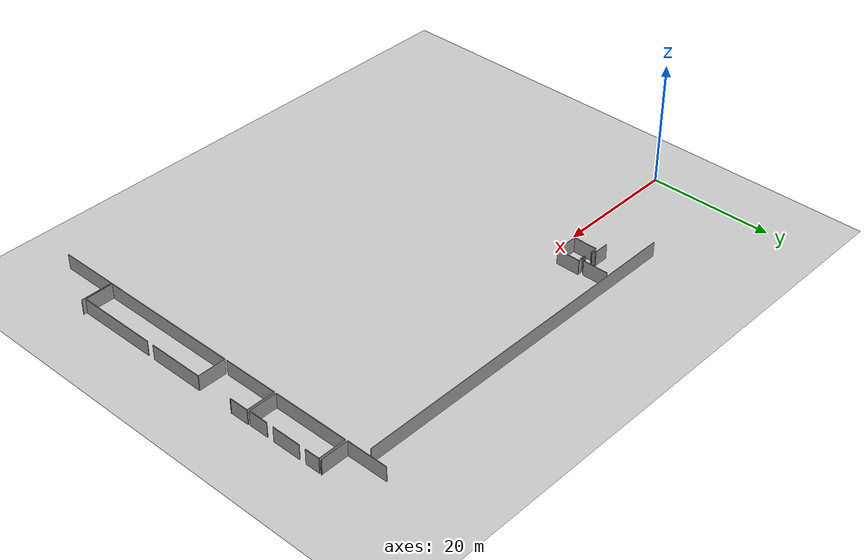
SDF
<sdf version="1.6">
 <world name="default">
  <model name="ground_plane">
   <static>1</static>
   <link name="link">
    <collision name="collision">
     <geometry><plane><normal>0 0 1</normal><size>100 100</size></plane></geometry>
     <surface><friction><ode><mu>100</mu><mu2>50</mu2></ode></friction></surface>
    </collision>
    <visual name="visual">
     <cast_shadows>0</cast_shadows>
     <geometry><plane><normal>0 0 1</normal><size>100 100</size></plane></geometry>
     <material>
      <script><uri>file://media/materials/scripts/gazebo.material</uri><name>Gazebo/Grey</name></script>
     </material>
    </visual>
   </link>
  </model>
  <model name="0510035739_A_40_1_102">
   <static>1</static>
   <link name="Wall_537">
    <collision name="Wall_537_Collision">
     <geometry><box><size>4.10431841136 0.1 2.5</size></box></geometry>
     <pose>2.05215920568 0 1.25 0 0 0</pose>
    </collision>
    <visual name="Wall_537_Visual">
     <pose>2.05215920568 0 1.25 0 0 0</pose>
     <geometry><box><size>4.10431841136 0.1 2.5</size></box></geometry>
     <material>
      <script><uri>file://media/materials/scripts/gazebo.material</uri><name>Gazebo/Grey</name></script>
      <ambient>1 1 1 1</ambient>
     </material>
    </visual>
    <pose>118.453130711 -39.162579457 0 0 0 -1.57079632679</pose>
   </link>
   <link name="Wall_538">
    <collision name="Wall_538_Collision">
     <geometry><box><size>0.332665539951 0.1 2.5</size></box></geometry>
     <pose>0.166332769976 0 1.25 0 0 0</pose>
    </collision>
    <visual name="Wall_538_Visual">
     <pose>0.166332769976 0 1.25 0 0 0</pose>
     <geometry><box><size>0.332665539951 0.1 2.5</size></box></geometry>
     <material>
      <script><uri>file://media/materials/scripts/gazebo.material</uri><name>Gazebo/Grey</name></script>
      <ambient>1 1 1 1</ambient>
     </material>
    </visual>
    <pose>118.453130711 -43.2668978684 0 0 0 3.14159265359</pose>
   </link>
   <link name="Wall_539">
    <collision name="Wall_539_Collision">
     <geometry><box><size>0.349731842537 0.1 2.5</size></box></geometry>
     <pose>0.174865921268 0 1.25 0 0 0</pose>
    </collision>
    <visual name="Wall_539_Visual">
     <pose>0.174865921268 0 1.25 0 0 0</pose>
     <geometry><box><size>0.349731842537 0.1 2.5</size></box></geometry>
     <material>
      <script><uri>file://media/materials/scripts/gazebo.material</uri><name>Gazebo/Grey</name></script>
      <ambient>1 1 1 1</ambient>
     </material>
    </visual>
    <pose>118.120465171 -43.2668978684 0 0 0 -1.57079632679</pose>
   </link>
   <link name="Wall_540">
    <collision name="Wall_540_Collision">
     <geometry><box><size>0.449582448709 0.1 2.5</size></box></geometry>
     <pose>0.224791224354 0 1.25 0 0 0</pose>
    </collision>
    <visual name="Wall_540_Visual">
     <pose>0.224791224354 0 1.25 0 0 0</pose>
     <geometry><box><size>0.449582448709 0.1 2.5</size></box></geometry>
     <material>
      <script><uri>file://media/materials/scripts/gazebo.material</uri><name>Gazebo/Grey</name></script>
      <ambient>1 1 1 1</ambient>
     </material>
    </visual>
    <pose>118.120465171 -43.6166297109 0 0 0 3.14159265359</pose>
   </link>
   <link name="Wall_541">
    <collision name="Wall_541_Collision">
     <geometry><box><size>0.449073006841 0.1 2.5</size></box></geometry>
     <pose>0.22453650342 0 1.25 0 0 0</pose>
    </collision>
    <visual name="Wall_541_Visual">
     <pose>0.22453650342 0 1.25 0 0 0</pose>
     <geometry><box><size>0.449073006841 0.1 2.5</size></box></geometry>
     <material>
      <script><uri>file://media/materials/scripts/gazebo.material</uri><name>Gazebo/Grey</name></script>
      <ambient>1 1 1 1</ambient>
     </material>
    </visual>
    <pose>116.109952838 -43.6166297109 0 0 0 3.14159265359</pose>
   </link>
   <link name="Wall_542">
    <collision name="Wall_542_Collision">
     <geometry><box><size>0.28859881835 0.1 2.5</size></box></geometry>
     <pose>0.144299409175 0 1.25 0 0 0</pose>
    </collision>
    <visual name="Wall_542_Visual">
     <pose>0.144299409175 0 1.25 0 0 0</pose>
     <geometry><box><size>0.28859881835 0.1 2.5</size></box></geometry>
     <material>
      <script><uri>file://media/materials/scripts/gazebo.material</uri><name>Gazebo/Grey</name></script>
      <ambient>1 1 1 1</ambient>
     </material>
    </visual>
    <pose>115.660879832 -43.6166297109 0 0 0 1.57079632679</pose>
   </link>
   <link name="Wall_543">
    <collision name="Wall_543_Collision">
     <geometry><box><size>0.038462861051 0.1 2.5</size></box></geometry>
     <pose>0.0192314305255 0 1.25 0 0 0</pose>
    </collision>
    <visual name="Wall_543_Visual">
     <pose>0.0192314305255 0 1.25 0 0 0</pose>
     <geometry><box><size>0.038462861051 0.1 2.5</size></box></geometry>
     <material>
      <script><uri>file://media/materials/scripts/gazebo.material</uri><name>Gazebo/Grey</name></script>
      <ambient>1 1 1 1</ambient>
     </material>
    </visual>
    <pose>115.660879832 -43.3280308926 0 0 0 1.57079632679</pose>
   </link>
   <link name="Wall_544">
    <collision name="Wall_544_Collision">
     <geometry><box><size>2.4073675483 0.1 2.5</size></box></geometry>
     <pose>1.20368377415 0 1.25 0 0 0</pose>
    </collision>
    <visual name="Wall_544_Visual">
     <pose>1.20368377415 0 1.25 0 0 0</pose>
     <geometry><box><size>2.4073675483 0.1 2.5</size></box></geometry>
     <material>
      <script><uri>file://media/materials/scripts/gazebo.material</uri><name>Gazebo/Grey</name></script>
      <ambient>1 1 1 1</ambient>
     </material>
    </visual>
    <pose>115.660879832 -43.2895680315 0 0 0 3.14159265359</pose>
   </link>
   <link name="Wall_557">
    <collision name="Wall_557_Collision">
     <geometry><box><size>3.85010691911 0.1 2.5</size></box></geometry>
     <pose>1.92505345956 0 1.25 0 0 0</pose>
    </collision>
    <visual name="Wall_557_Visual">
     <pose>1.92505345956 0 1.25 0 0 0</pose>
     <geometry><box><size>3.85010691911 0.1 2.5</size></box></geometry>
     <material>
      <script><uri>file://media/materials/scripts/gazebo.material</uri><name>Gazebo/Grey</name></script>
      <ambient>1 1 1 1</ambient>
     </material>
    </visual>
    <pose>115.046492938 -47.6417299118 0 0 0 1.57079632679</pose>
   </link>
   <link name="Wall_558">
    <collision name="Wall_558_Collision">
     <geometry><box><size>1.05887492311 0.1 2.5</size></box></geometry>
     <pose>0.529437461553 0 1.25 0 0 0</pose>
    </collision>
    <visual name="Wall_558_Visual">
     <pose>0.529437461553 0 1.25 0 0 0</pose>
     <geometry><box><size>1.05887492311 0.1 2.5</size></box></geometry>
     <material>
      <script><uri>file://media/materials/scripts/gazebo.material</uri><name>Gazebo/Grey</name></script>
      <ambient>1 1 1 1</ambient>
     </material>
    </visual>
    <pose>115.046492938 -43.7916229926 0 0 0 0.0</pose>
   </link>
   <link name="Wall_559">
    <collision name="Wall_559_Collision">
     <geometry><box><size>0.143153164971 0.1 2.5</size></box></geometry>
     <pose>0.0715765824856 0 1.25 0 0 0</pose>
    </collision>
    <visual name="Wall_559_Visual">
     <pose>0.0715765824856 0 1.25 0 0 0</pose>
     <geometry><box><size>0.143153164971 0.1 2.5</size></box></geometry>
     <material>
      <script><uri>file://media/materials/scripts/gazebo.material</uri><name>Gazebo/Grey</name></script>
      <ambient>1 1 1 1</ambient>
     </material>
    </visual>
    <pose>117.591409791 -43.7916229926 0 0 0 -1.57079632679</pose>
   </link>
   <link name="Wall_560">
    <collision name="Wall_560_Collision">
     <geometry><box><size>0.220333608007 0.1 2.5</size></box></geometry>
     <pose>0.110166804004 0 1.25 0 0 0</pose>
    </collision>
    <visual name="Wall_560_Visual">
     <pose>0.110166804004 0 1.25 0 0 0</pose>
     <geometry><box><size>0.220333608007 0.1 2.5</size></box></geometry>
     <material>
      <script><uri>file://media/materials/scripts/gazebo.material</uri><name>Gazebo/Grey</name></script>
      <ambient>1 1 1 1</ambient>
     </material>
    </visual>
    <pose>117.591409791 -43.9347761576 0 0 0 0.0</pose>
   </link>
   <link name="Wall_561">
    <collision name="Wall_561_Collision">
     <geometry><box><size>0.441940820685 0.1 2.5</size></box></geometry>
     <pose>0.220970410343 0 1.25 0 0 0</pose>
    </collision>
    <visual name="Wall_561_Visual">
     <pose>0.220970410343 0 1.25 0 0 0</pose>
     <geometry><box><size>0.441940820685 0.1 2.5</size></box></geometry>
     <material>
      <script><uri>file://media/materials/scripts/gazebo.material</uri><name>Gazebo/Grey</name></script>
      <ambient>1 1 1 1</ambient>
     </material>
    </visual>
    <pose>117.811743399 -43.9347761576 0 0 0 0.0</pose>
   </link>
   <link name="Wall_562">
    <collision name="Wall_562_Collision">
     <geometry><box><size>0.134747374146 0.1 2.5</size></box></geometry>
     <pose>0.0673736870728 0 1.25 0 0 0</pose>
    </collision>
    <visual name="Wall_562_Visual">
     <pose>0.0673736870728 0 1.25 0 0 0</pose>
     <geometry><box><size>0.134747374146 0.1 2.5</size></box></geometry>
     <material>
      <script><uri>file://media/materials/scripts/gazebo.material</uri><name>Gazebo/Grey</name></script>
      <ambient>1 1 1 1</ambient>
     </material>
    </visual>
    <pose>118.25368422 -43.9347761576 0 0 0 1.57079632679</pose>
   </link>
   <link name="Wall_563">
    <collision name="Wall_563_Collision">
     <geometry><box><size>0.616424660553 0.1 2.5</size></box></geometry>
     <pose>0.308212330276 0 1.25 0 0 0</pose>
    </collision>
    <visual name="Wall_563_Visual">
     <pose>0.308212330276 0 1.25 0 0 0</pose>
     <geometry><box><size>0.616424660553 0.1 2.5</size></box></geometry>
     <material>
      <script><uri>file://media/materials/scripts/gazebo.material</uri><name>Gazebo/Grey</name></script>
      <ambient>1 1 1 1</ambient>
     </material>
    </visual>
    <pose>118.25368422 -43.8000287835 0 0 0 0.0</pose>
   </link>
   <link name="Wall_564">
    <collision name="Wall_564_Collision">
     <geometry><box><size>3.8343142212 0.1 2.5</size></box></geometry>
     <pose>1.9171571106 0 1.25 0 0 0</pose>
    </collision>
    <visual name="Wall_564_Visual">
     <pose>1.9171571106 0 1.25 0 0 0</pose>
     <geometry><box><size>3.8343142212 0.1 2.5</size></box></geometry>
     <material>
      <script><uri>file://media/materials/scripts/gazebo.material</uri><name>Gazebo/Grey</name></script>
      <ambient>1 1 1 1</ambient>
     </material>
    </visual>
    <pose>118.87010888 -43.8000287835 0 0 0 -1.57079632679</pose>
   </link>
   <link name="Wall_565">
    <collision name="Wall_565_Collision">
     <geometry><box><size>3.8236230774 0.1 2.5</size></box></geometry>
     <pose>1.9118115387 0 1.25 0 0 0</pose>
    </collision>
    <visual name="Wall_565_Visual">
     <pose>1.9118115387 0 1.25 0 0 0</pose>
     <geometry><box><size>3.8236230774 0.1 2.5</size></box></geometry>
     <material>
      <script><uri>file://media/materials/scripts/gazebo.material</uri><name>Gazebo/Grey</name></script>
      <ambient>1 1 1 1</ambient>
     </material>
    </visual>
    <pose>118.87010888 -47.6343430047 0 0 0 -3.1396607394</pose>
   </link>
   <link name="Wall_575">
    <collision name="Wall_575_Collision">
     <geometry><box><size>57.4607124799 0.1 2.5</size></box></geometry>
     <pose>28.73035624 0 1.25 0 0 0</pose>
    </collision>
    <visual name="Wall_575_Visual">
     <pose>28.73035624 0 1.25 0 0 0</pose>
     <geometry><box><size>57.4607124799 0.1 2.5</size></box></geometry>
     <material>
      <script><uri>file://media/materials/scripts/gazebo.material</uri><name>Gazebo/Grey</name></script>
      <ambient>1 1 1 1</ambient>
     </material>
    </visual>
    <pose>165.725260548 -38.648552612 0 0 0 3.14159265359</pose>
   </link>
   <link name="Wall_1014">
    <collision name="Wall_1014_Collision">
     <geometry><box><size>6.65738633397 0.1 2.5</size></box></geometry>
     <pose>3.32869316698 0 1.25 0 0 0</pose>
    </collision>
    <visual name="Wall_1014_Visual">
     <pose>3.32869316698 0 1.25 0 0 0</pose>
     <geometry><box><size>6.65738633397 0.1 2.5</size></box></geometry>
     <material>
      <script><uri>file://media/materials/scripts/gazebo.material</uri><name>Gazebo/Grey</name></script>
      <ambient>1 1 1 1</ambient>
     </material>
    </visual>
    <pose>166.612708282 -41.7248173333 0 0 0 1.57079632679</pose>
   </link>
   <link name="Wall_1017">
    <collision name="Wall_1017_Collision">
     <geometry><box><size>0.101378931777 0.1 2.5</size></box></geometry>
     <pose>0.0506894658884 0 1.25 0 0 0</pose>
    </collision>
    <visual name="Wall_1017_Visual">
     <pose>0.0506894658884 0 1.25 0 0 0</pose>
     <geometry><box><size>0.101378931777 0.1 2.5</size></box></geometry>
     <material>
      <script><uri>file://media/materials/scripts/gazebo.material</uri><name>Gazebo/Grey</name></script>
      <ambient>1 1 1 1</ambient>
     </material>
    </visual>
    <pose>171.22595912 -41.6170703781 0 0 0 -1.57079632679</pose>
   </link>
   <link name="Wall_1018">
    <collision name="Wall_1018_Collision">
     <geometry><box><size>4.61325523285 0.1 2.5</size></box></geometry>
     <pose>2.30662761642 0 1.25 0 0 0</pose>
    </collision>
    <visual name="Wall_1018_Visual">
     <pose>2.30662761642 0 1.25 0 0 0</pose>
     <geometry><box><size>4.61325523285 0.1 2.5</size></box></geometry>
     <material>
      <script><uri>file://media/materials/scripts/gazebo.material</uri><name>Gazebo/Grey</name></script>
      <ambient>1 1 1 1</ambient>
     </material>
    </visual>
    <pose>171.22595912 -41.7184493099 0 0 0 -3.1402122779</pose>
   </link>
   <link name="Wall_1019">
    <collision name="Wall_1019_Collision">
     <geometry><box><size>12.4815804925 0.1 2.5</size></box></geometry>
     <pose>6.24079024623 0 1.25 0 0 0</pose>
    </collision>
    <visual name="Wall_1019_Visual">
     <pose>6.24079024623 0 1.25 0 0 0</pose>
     <geometry><box><size>12.4815804925 0.1 2.5</size></box></geometry>
     <material>
      <script><uri>file://media/materials/scripts/gazebo.material</uri><name>Gazebo/Grey</name></script>
      <ambient>1 1 1 1</ambient>
     </material>
    </visual>
    <pose>166.639199259 -54.5683562731 0 0 0 1.57079632679</pose>
   </link>
   <link name="Wall_1020">
    <collision name="Wall_1020_Collision">
     <geometry><box><size>4.51976825489 0.1 2.5</size></box></geometry>
     <pose>2.25988412745 0 1.25 0 0 0</pose>
    </collision>
    <visual name="Wall_1020_Visual">
     <pose>2.25988412745 0 1.25 0 0 0</pose>
     <geometry><box><size>4.51976825489 0.1 2.5</size></box></geometry>
     <material>
      <script><uri>file://media/materials/scripts/gazebo.material</uri><name>Gazebo/Grey</name></script>
      <ambient>1 1 1 1</ambient>
     </material>
    </visual>
    <pose>166.639199259 -42.0867757806 0 0 0 0.0</pose>
   </link>
   <link name="Wall_1021">
    <collision name="Wall_1021_Collision">
     <geometry><box><size>2.39998064121 0.1 2.5</size></box></geometry>
     <pose>1.1999903206 0 1.25 0 0 0</pose>
    </collision>
    <visual name="Wall_1021_Visual">
     <pose>1.1999903206 0 1.25 0 0 0</pose>
     <geometry><box><size>2.39998064121 0.1 2.5</size></box></geometry>
     <material>
      <script><uri>file://media/materials/scripts/gazebo.material</uri><name>Gazebo/Grey</name></script>
      <ambient>1 1 1 1</ambient>
     </material>
    </visual>
    <pose>171.158967514 -42.0867757806 0 0 0 -1.57079632679</pose>
   </link>
   <link name="Wall_1022">
    <collision name="Wall_1022_Collision">
     <geometry><box><size>4.71182783922 0.1 2.5</size></box></geometry>
     <pose>2.35591391961 0 1.25 0 0 0</pose>
    </collision>
    <visual name="Wall_1022_Visual">
     <pose>2.35591391961 0 1.25 0 0 0</pose>
     <geometry><box><size>4.71182783922 0.1 2.5</size></box></geometry>
     <material>
      <script><uri>file://media/materials/scripts/gazebo.material</uri><name>Gazebo/Grey</name></script>
      <ambient>1 1 1 1</ambient>
     </material>
    </visual>
    <pose>171.158967514 -45.5652448569 0 0 0 -1.57079632679</pose>
   </link>
   <link name="Wall_1023">
    <collision name="Wall_1023_Collision">
     <geometry><box><size>3.19827604872 0.1 2.5</size></box></geometry>
     <pose>1.59913802436 0 1.25 0 0 0</pose>
    </collision>
    <visual name="Wall_1023_Visual">
     <pose>1.59913802436 0 1.25 0 0 0</pose>
     <geometry><box><size>3.19827604872 0.1 2.5</size></box></geometry>
     <material>
      <script><uri>file://media/materials/scripts/gazebo.material</uri><name>Gazebo/Grey</name></script>
      <ambient>1 1 1 1</ambient>
     </material>
    </visual>
    <pose>171.158967514 -51.394533434 0 0 0 -1.57079632679</pose>
   </link>
   <link name="Wall_1024">
    <collision name="Wall_1024_Collision">
     <geometry><box><size>4.51983440376 0.1 2.5</size></box></geometry>
     <pose>2.25991720188 0 1.25 0 0 0</pose>
    </collision>
    <visual name="Wall_1024_Visual">
     <pose>2.25991720188 0 1.25 0 0 0</pose>
     <geometry><box><size>4.51983440376 0.1 2.5</size></box></geometry>
     <material>
      <script><uri>file://media/materials/scripts/gazebo.material</uri><name>Gazebo/Grey</name></script>
      <ambient>1 1 1 1</ambient>
     </material>
    </visual>
    <pose>171.158967514 -54.5928094828 0 0 0 3.13618242685</pose>
   </link>
   <link name="Wall_1025">
    <collision name="Wall_1025_Collision">
     <geometry><box><size>9.00795111396 0.1 2.5</size></box></geometry>
     <pose>4.50397555698 0 1.25 0 0 0</pose>
    </collision>
    <visual name="Wall_1025_Visual">
     <pose>4.50397555698 0 1.25 0 0 0</pose>
     <geometry><box><size>9.00795111396 0.1 2.5</size></box></geometry>
     <material>
      <script><uri>file://media/materials/scripts/gazebo.material</uri><name>Gazebo/Grey</name></script>
      <ambient>1 1 1 1</ambient>
     </material>
    </visual>
    <pose>166.628246259 -63.93979416 0 0 0 1.57079632679</pose>
   </link>
   <link name="Wall_1026">
    <collision name="Wall_1026_Collision">
     <geometry><box><size>4.61401500052 0.1 2.5</size></box></geometry>
     <pose>2.30700750026 0 1.25 0 0 0</pose>
    </collision>
    <visual name="Wall_1026_Visual">
     <pose>2.30700750026 0 1.25 0 0 0</pose>
     <geometry><box><size>4.61401500052 0.1 2.5</size></box></geometry>
     <material>
      <script><uri>file://media/materials/scripts/gazebo.material</uri><name>Gazebo/Grey</name></script>
      <ambient>1 1 1 1</ambient>
     </material>
    </visual>
    <pose>166.628246259 -54.9318430461 0 0 0 0.0</pose>
   </link>
   <link name="Wall_1027">
    <collision name="Wall_1027_Collision">
     <geometry><box><size>3.10861427991 0.1 2.5</size></box></geometry>
     <pose>1.55430713996 0 1.25 0 0 0</pose>
    </collision>
    <visual name="Wall_1027_Visual">
     <pose>1.55430713996 0 1.25 0 0 0</pose>
     <geometry><box><size>3.10861427991 0.1 2.5</size></box></geometry>
     <material>
      <script><uri>file://media/materials/scripts/gazebo.material</uri><name>Gazebo/Grey</name></script>
      <ambient>1 1 1 1</ambient>
     </material>
    </visual>
    <pose>171.24226126 -54.9318430461 0 0 0 -1.57079632679</pose>
   </link>
   <link name="Wall_1028">
    <collision name="Wall_1028_Collision">
     <geometry><box><size>0.105963908591 0.1 2.5</size></box></geometry>
     <pose>0.0529819542954 0 1.25 0 0 0</pose>
    </collision>
    <visual name="Wall_1028_Visual">
     <pose>0.0529819542954 0 1.25 0 0 0</pose>
     <geometry><box><size>0.105963908591 0.1 2.5</size></box></geometry>
     <material>
      <script><uri>file://media/materials/scripts/gazebo.material</uri><name>Gazebo/Grey</name></script>
      <ambient>1 1 1 1</ambient>
     </material>
    </visual>
    <pose>171.24226126 -58.040457326 0 0 0 0.0</pose>
   </link>
   <link name="Wall_1034">
    <collision name="Wall_1034_Collision">
     <geometry><box><size>23.2906633315 0.1 2.5</size></box></geometry>
     <pose>11.6453316658 0 1.25 0 0 0</pose>
    </collision>
    <visual name="Wall_1034_Visual">
     <pose>11.6453316658 0 1.25 0 0 0</pose>
     <geometry><box><size>23.2906633315 0.1 2.5</size></box></geometry>
     <material>
      <script><uri>file://media/materials/scripts/gazebo.material</uri><name>Gazebo/Grey</name></script>
      <ambient>1 1 1 1</ambient>
     </material>
    </visual>
    <pose>166.639199259 -87.6163597067 0 0 0 1.57079632679</pose>
   </link>
   <link name="Wall_1035">
    <collision name="Wall_1035_Collision">
     <geometry><box><size>4.55466502287 0.1 2.5</size></box></geometry>
     <pose>2.27733251143 0 1.25 0 0 0</pose>
    </collision>
    <visual name="Wall_1035_Visual">
     <pose>2.27733251143 0 1.25 0 0 0</pose>
     <geometry><box><size>4.55466502287 0.1 2.5</size></box></geometry>
     <material>
      <script><uri>file://media/materials/scripts/gazebo.material</uri><name>Gazebo/Grey</name></script>
      <ambient>1 1 1 1</ambient>
     </material>
    </visual>
    <pose>166.639199259 -64.3256963752 0 0 0 0.0</pose>
   </link>
   <link name="Wall_1036">
    <collision name="Wall_1036_Collision">
     <geometry><box><size>9.07672576617 0.1 2.5</size></box></geometry>
     <pose>4.53836288308 0 1.25 0 0 0</pose>
    </collision>
    <visual name="Wall_1036_Visual">
     <pose>4.53836288308 0 1.25 0 0 0</pose>
     <geometry><box><size>9.07672576617 0.1 2.5</size></box></geometry>
     <material>
      <script><uri>file://media/materials/scripts/gazebo.material</uri><name>Gazebo/Grey</name></script>
      <ambient>1 1 1 1</ambient>
     </material>
    </visual>
    <pose>171.193864282 -64.3256963752 0 0 0 -1.57079632679</pose>
   </link>
   <link name="Wall_1037">
    <collision name="Wall_1037_Collision">
     <geometry><box><size>13.0791558039 0.1 2.5</size></box></geometry>
     <pose>6.53957790194 0 1.25 0 0 0</pose>
    </collision>
    <visual name="Wall_1037_Visual">
     <pose>6.53957790194 0 1.25 0 0 0</pose>
     <geometry><box><size>13.0791558039 0.1 2.5</size></box></geometry>
     <material>
      <script><uri>file://media/materials/scripts/gazebo.material</uri><name>Gazebo/Grey</name></script>
      <ambient>1 1 1 1</ambient>
     </material>
    </visual>
    <pose>171.193864282 -74.5247225771 0 0 0 -1.57079632679</pose>
   </link>
   <link name="Wall_1038">
    <collision name="Wall_1038_Collision">
     <geometry><box><size>4.55468212437 0.1 2.5</size></box></geometry>
     <pose>2.27734106218 0 1.25 0 0 0</pose>
    </collision>
    <visual name="Wall_1038_Visual">
     <pose>2.27734106218 0 1.25 0 0 0</pose>
     <geometry><box><size>4.55468212437 0.1 2.5</size></box></geometry>
     <material>
      <script><uri>file://media/materials/scripts/gazebo.material</uri><name>Gazebo/Grey</name></script>
      <ambient>1 1 1 1</ambient>
     </material>
    </visual>
    <pose>171.193864282 -87.6038783809 0 0 0 -3.13885232154</pose>
   </link>
   <link name="Wall_1039">
    <collision name="Wall_1039_Collision">
     <geometry><box><size>9.64475344924 0.1 2.5</size></box></geometry>
     <pose>4.82237672462 0 1.25 0 0 0</pose>
    </collision>
    <visual name="Wall_1039_Visual">
     <pose>4.82237672462 0 1.25 0 0 0</pose>
     <geometry><box><size>9.64475344924 0.1 2.5</size></box></geometry>
     <material>
      <script><uri>file://media/materials/scripts/gazebo.material</uri><name>Gazebo/Grey</name></script>
      <ambient>1 1 1 1</ambient>
     </material>
    </visual>
    <pose>166.621623515 -97.4651446242 0 0 0 1.57079632679</pose>
   </link>
   <link name="Wall_1040">
    <collision name="Wall_1040_Collision">
     <geometry><box><size>5.13390042704 0.1 2.5</size></box></geometry>
     <pose>2.56695021352 0 1.25 0 0 0</pose>
    </collision>
    <visual name="Wall_1040_Visual">
     <pose>2.56695021352 0 1.25 0 0 0</pose>
     <geometry><box><size>5.13390042704 0.1 2.5</size></box></geometry>
     <material>
      <script><uri>file://media/materials/scripts/gazebo.material</uri><name>Gazebo/Grey</name></script>
      <ambient>1 1 1 1</ambient>
     </material>
    </visual>
    <pose>166.621623515 -87.8203911749 0 0 0 0.0</pose>
   </link>
   <pose>-92.5 49.8157534709 0 0 0 0</pose>
  </model>
 </world>
</sdf>
